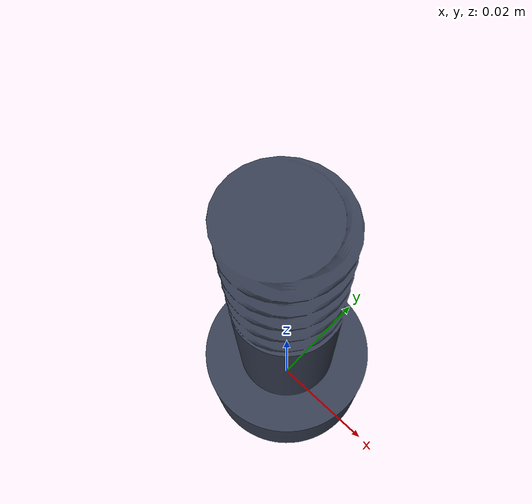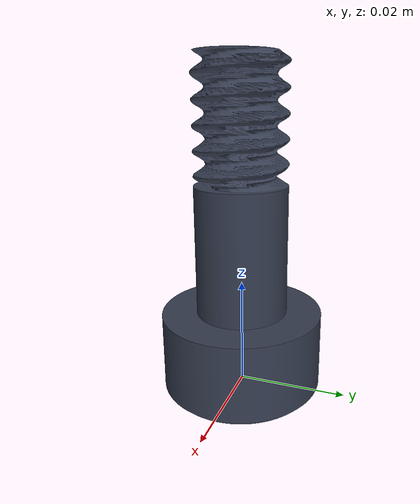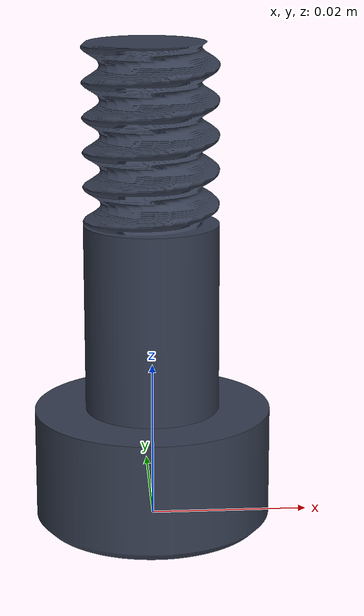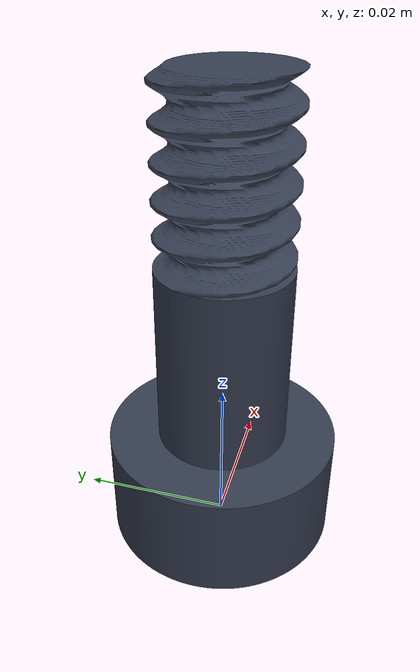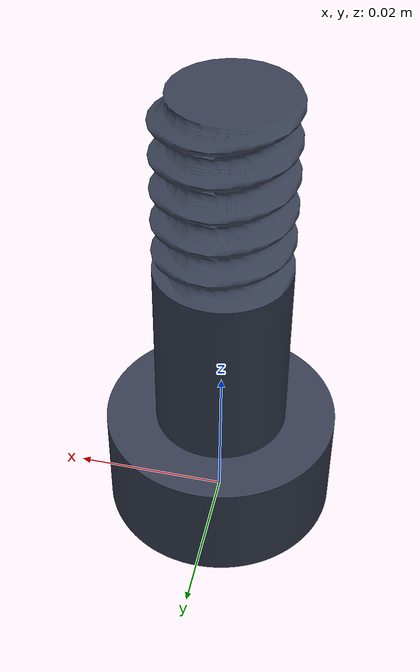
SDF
<?xml version="1.0" ?>
<sdf version='1.4'>
  <model name="gearbox_bolt_grey">
      <static>0</static>
      <link name='link'>
        <inertial>
          <mass>0.0592855</mass>
          <inertia>
            <ixx>2.31818050784e-05</ixx>
            <ixy>0.000000</ixy>
            <ixz>0.000000</ixz>
            <iyy>2.31851837098e-05</iyy>
            <iyz>0.000000</iyz>
            <izz>8.88944636856e-06</izz>
          </inertia>
        </inertial>
        <collision name='collision'>
          <geometry>
            <mesh>
              <uri>model://gearbox_bolt_grey/meshes/gear_bolt_simple.stl</uri>
              <scale>1 1 1</scale>
            </mesh>
          </geometry>
          <surface>
            <friction>
              <ode>
                <mu>30.0</mu>
                <mu2>30.0</mu2>
              </ode>
            </friction>
          </surface>
        </collision>
        <visual name='visual'>
          <geometry>
            <mesh>
              <uri>model://gearbox_bolt_grey/meshes/screw_grey.dae</uri>
              <scale>1 1 1</scale>
            </mesh>
          </geometry>
        </visual>
        <velocity_decay>
          <linear>0.000000</linear>
          <angular>0.000000</angular>
        </velocity_decay>
        <self_collide>0</self_collide>
        <kinematic>0</kinematic>
        <gravity>1</gravity>
      </link>
  </model>
</sdf>
